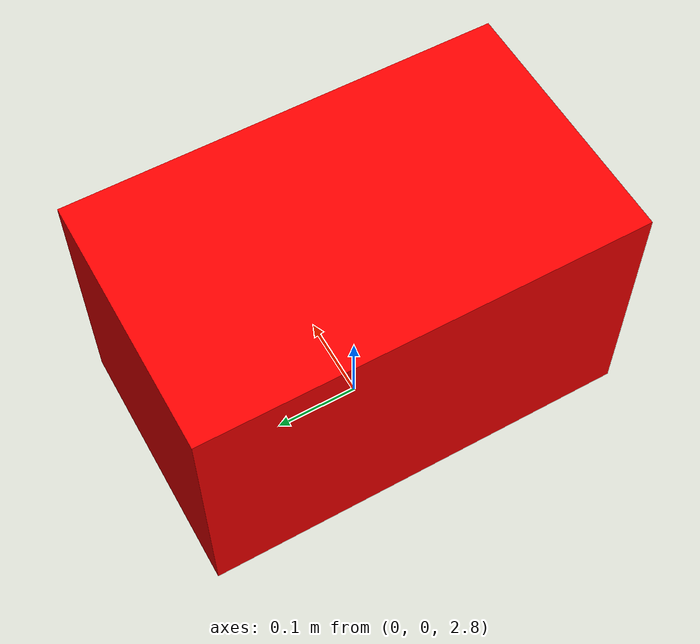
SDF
<?xml version="1.0" ?>
<sdf version="1.6">
<model name="stereo_camera_3">
  <link name="camera_link">
    <pose>0 0 3 0 0 0</pose>
      <inertial>
        <mass>0.1</mass>
        <inertia>
          <ixx>0.000166667</ixx>
          <iyy>0.000166667</iyy>
          <izz>0.000166667</izz>
        </inertia>
      </inertial>
      <visual name="visual">
        <geometry>
          <box>
            <size>0.3 0.5 0.3</size>
          </box>
        </geometry>
        <material>
            <ambient>1 0 0 1</ambient>
            <diffuse>1 0 0 1</diffuse>
            <specular>0.1 0.1 0.1 1</specular>
            <emissive>0 0 0 0</emissive>
        </material>
      </visual>

    <sensor type="multicamera" name="stereo_camera">
      <update_rate>30.0</update_rate>
      <camera name="left">
        <horizontal_fov>1.3962634</horizontal_fov>
        <image>
          <width>800</width>
          <height>800</height>
          <format>R8G8B8</format>
        </image>
        <clip>
          <near>0.02</near>
          <far>300</far>
        </clip>
        <noise>
          <type>gaussian</type>
          <mean>0.0</mean>
          <stddev>0.007</stddev>
        </noise>
      </camera>
      <camera name="right">
        <pose>0 -0.07 0 0 0 0</pose>
        <horizontal_fov>1.3962634</horizontal_fov>
        <image>
          <width>800</width>
          <height>800</height>
          <format>R8G8B8</format>
        </image>
        <clip>
          <near>0.02</near>
          <far>300</far>
        </clip>
        <noise>
          <type>gaussian</type>
          <mean>0.0</mean>
          <stddev>0.007</stddev>
        </noise>
      </camera>
      <plugin name="stereo_camera_controller" filename="libgazebo_ros_multicamera.so">
        <alwaysOn>true</alwaysOn>
        <updateRate>0.0</updateRate>
        <cameraName>stereo_camera_3</cameraName>
        <imageTopicName>image_raw</imageTopicName>
        <cameraInfoTopicName>camera_info</cameraInfoTopicName>
        <frameName>left_camera_optical_frame</frameName>
        <hackBaseline>0.07</hackBaseline>
        <distortionK1>0.0</distortionK1>
        <distortionK2>0.0</distortionK2>
        <distortionK3>0.0</distortionK3>
        <distortionT1>0.0</distortionT1>
        <distortionT2>0.0</distortionT2>
      </plugin>
    </sensor>
  </link>

  <static>1</static>
</model>
</sdf>
